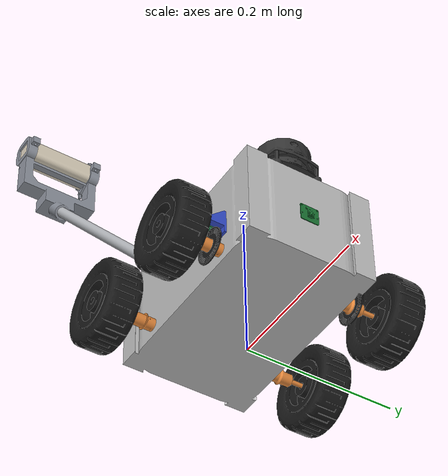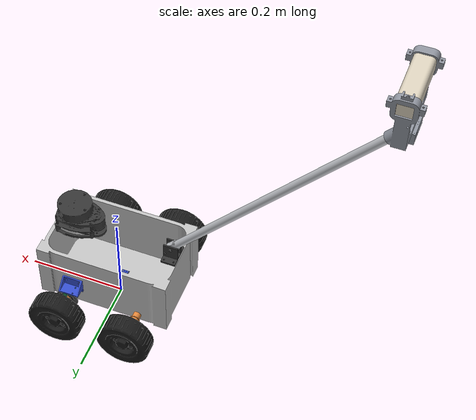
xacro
<?xml version="1.0"?>
<robot name="guide_dog_rover" xmlns:xacro="http://www.ros.org/wiki/xacro">

  <!-- Drivetrain                                                          -->
  <xacro:property name="wheel_radius"   value="0.055"/>   <!-- 110 mm wheel, measured -->
  <xacro:property name="wheel_width"    value="0.041"/>
  <xacro:property name="cad_wheel_radius" value="0.0598"/>  <!-- size of meshes/*_wheel.stl -->
  <xacro:property name="track_width"    value="0.290"/>   <!-- L wheel centre to R wheel centre: 240 + 2 x 25 extender -->
  <xacro:property name="wheelbase"      value="0.1473"/>  <!-- front axle to rear axle -->

  <xacro:property name="body_wall_y"    value="0.0813"/>  <!-- outer face of the side wall, from the CAD -->

  <!-- Chassis tub: outer bounding box, relative to base_link              -->
  <xacro:property name="chassis_length" value="0.2743"/>
  <xacro:property name="chassis_width"  value="0.2083"/>
  <xacro:property name="chassis_height" value="0.1296"/>
  <xacro:property name="chassis_bottom" value="-0.0153"/>  <!-- underside is 15 mm below the axles -->

  <!-- Sensors: pose relative to base_link (x forward, y left, z up)       -->

  <xacro:property name="laser_x"   value="0.08805"/>
  <xacro:property name="laser_y"   value="-0.0011"/>
  <xacro:property name="laser_z"   value="0.1730"/>
  <xacro:property name="laser_yaw" value="${pi}"/>

  <xacro:property name="imu_x"     value="-0.00455"/>
  <xacro:property name="imu_y"     value="-0.0080"/>
  <xacro:property name="imu_z"     value="-0.0097"/>
  <xacro:property name="imu_roll"  value="0.0"/>
  <xacro:property name="imu_pitch" value="0.0"/>
  <xacro:property name="imu_yaw"   value="${-pi/2}"/>

  <xacro:property name="camera_x"     value="0.13975"/>
  <xacro:property name="camera_y"     value="0.0"/>
  <xacro:property name="camera_z"     value="0.0469"/>
  <xacro:property name="camera_pitch" value="0.0"/>     <!-- positive = tilted DOWN -->

  <!-- Masses, only used by simulators. -->
  <xacro:property name="chassis_mass" value="2.0"/>
  <xacro:property name="wheel_mass"   value="0.15"/>

  <!-- Derived - do not edit                                               -->
  <xacro:property name="half_track" value="${track_width / 2}"/>
  <xacro:property name="half_base"  value="${wheelbase / 2}"/>
  <xacro:property name="mesh_dir"   value="package://rover_description/meshes"/>
  <xacro:property name="ext_offset" value="${half_track - body_wall_y}"/>  <!-- wheel centre to wall face -->
  <xacro:property name="mm"         value="0.001 0.001 0.001"/>            <!-- encoder meshes are in mm -->

  <!-- Materials                                                           -->
  <material name="grey">  <color rgba="0.75 0.75 0.75 1"/></material>
  <material name="black"> <color rgba="0.10 0.10 0.10 1"/></material>
  <material name="dark">  <color rgba="0.20 0.20 0.20 1"/></material>
  <material name="green"> <color rgba="0.10 0.45 0.20 1"/></material>
  <material name="blue">  <color rgba="0.20 0.30 0.80 1"/></material>
  <material name="orange"><color rgba="0.89 0.53 0.23 1"/></material>
  <material name="sensor"><color rgba="0.17 0.54 0.32 1"/></material>

  <!-- Inertia helpers                                                     -->
  <xacro:macro name="box_inertia" params="m x y z *origin">
    <inertial>
      <xacro:insert_block name="origin"/>
      <mass value="${m}"/>
      <inertia ixx="${m*(y*y+z*z)/12}" ixy="0" ixz="0"
               iyy="${m*(x*x+z*z)/12}" iyz="0"
               izz="${m*(x*x+y*y)/12}"/>
    </inertial>
  </xacro:macro>

  <!-- Cylinder with its axis along the link's Y (how the wheels are built). -->
  <xacro:macro name="wheel_inertia" params="m r h">
    <inertial>
      <mass value="${m}"/>
      <inertia ixx="${m*(3*r*r+h*h)/12}" ixy="0" ixz="0"
               iyy="${m*r*r/2}"          iyz="0"
               izz="${m*(3*r*r+h*h)/12}"/>
    </inertial>
  </xacro:macro>

  <!-- Base                                                                -->
  <link name="base_footprint"/>

  <joint name="base_footprint_joint" type="fixed">
    <parent link="base_footprint"/>
    <child  link="base_link"/>
    <origin xyz="0 0 ${wheel_radius}" rpy="0 0 0"/>
  </joint>

  <link name="base_link"/>

  <!-- The chassis link shares base_link's origin so its mesh drops straight
       in; the collision box is offset to where the tub actually is. -->
  <joint name="chassis_joint" type="fixed">
    <parent link="base_link"/>
    <child  link="chassis"/>
    <origin xyz="0 0 0" rpy="0 0 0"/>
  </joint>

  <link name="chassis">
    <visual>
      <geometry><mesh filename="${mesh_dir}/chassis.stl"/></geometry>
      <material name="grey"/>
    </visual>
    <collision>
      <origin xyz="0 0 ${chassis_bottom + chassis_height / 2}" rpy="0 0 0"/>
      <geometry><box size="${chassis_length} ${chassis_width} ${chassis_height}"/></geometry>
    </collision>
    <xacro:box_inertia m="${chassis_mass}" x="${chassis_length}" y="${chassis_width}" z="${chassis_height}">
      <origin xyz="0 0 ${chassis_bottom + chassis_height / 2}" rpy="0 0 0"/>
    </xacro:box_inertia>
  </link>

  <!-- Wheels                                                              -->
  <!-- Skid-steer: both wheels on a side are driven together and share one  -->
  <!-- encoder, so kinematically this is a differential drive with         -->
  <!-- track_width as the separation. Four are modelled because four touch  -->
  <!-- the ground (footprint, collision, simulation).                      -->
  <!-- side: +1 left, -1 right. Extender meshes have X out of the wall, so they
       are yawed by side * pi/2 and moved from the wheel centre back to the wall. -->
  <xacro:macro name="wheel" params="prefix x side encoder">
    <xacro:property name="y" value="${side * half_track}"/>
    <joint name="${prefix}_wheel_joint" type="continuous">
      <parent link="base_link"/>
      <child  link="${prefix}_wheel"/>
      <origin xyz="${x} ${y} 0" rpy="0 0 0"/>
      <axis xyz="0 1 0"/>
    </joint>

    <link name="${prefix}_wheel">
      <visual>
        <!-- Mesh axle is along Y: scale X and Z (the diameter), keep Y (the width). -->
        <geometry><mesh filename="${mesh_dir}/${prefix}_wheel.stl"
                        scale="${wheel_radius / cad_wheel_radius} 1 ${wheel_radius / cad_wheel_radius}"/></geometry>
        <material name="black"/>
      </visual>
      <collision>
        <origin xyz="0 0 0" rpy="${pi/2} 0 0"/>
        <geometry><cylinder radius="${wheel_radius}" length="${wheel_width}"/></geometry>
      </collision>
      <visual>
        <origin xyz="0 ${-side * ext_offset} 0" rpy="0 0 ${side * pi/2}"/>
        <geometry><mesh filename="${mesh_dir}/shaft_extender.stl" scale="${mm}"/></geometry>
        <material name="orange"/>
      </visual>
      <xacro:if value="${encoder}">
        <visual>
          <origin xyz="0 ${-side * ext_offset} 0" rpy="0 0 ${side * pi/2}"/>
          <geometry><mesh filename="${mesh_dir}/encoder_disc.stl" scale="${mm}"/></geometry>
          <material name="black"/>
        </visual>
      </xacro:if>
      <xacro:wheel_inertia m="${wheel_mass}" r="${wheel_radius}" h="${wheel_width}"/>
    </link>

    <!-- Slot sensor and its wall bracket: fixed to the body, the disc turns through the fork. -->
    <xacro:if value="${encoder}">
      <xacro:property name="hand" value="${'left' if side > 0 else 'right'}"/>
      <joint name="${prefix}_encoder_joint" type="fixed">
        <parent link="base_link"/>
        <child  link="${prefix}_encoder"/>
        <origin xyz="${x} ${side * body_wall_y} 0" rpy="0 0 ${side * pi/2}"/>
      </joint>
      <link name="${prefix}_encoder">
        <visual>
          <geometry><mesh filename="${mesh_dir}/encoder_holder_${hand}.stl" scale="${mm}"/></geometry>
          <material name="blue"/>
        </visual>
        <visual>
          <geometry><mesh filename="${mesh_dir}/encoder_sensor_${hand}.stl" scale="${mm}"/></geometry>
          <material name="sensor"/>
        </visual>
      </link>
    </xacro:if>
  </xacro:macro>

  <!-- One encoder per side, on the front wheels; the rear extenders have no disc. -->
  <xacro:wheel prefix="front_left"  x="${ half_base}" side="1"  encoder="true"/>
  <xacro:wheel prefix="front_right" x="${ half_base}" side="-1" encoder="true"/>
  <xacro:wheel prefix="rear_left"   x="${-half_base}" side="1"  encoder="false"/>
  <xacro:wheel prefix="rear_right"  x="${-half_base}" side="-1" encoder="false"/>

  <!-- LiDAR                                                               -->
  <joint name="laser_joint" type="fixed">
    <parent link="base_link"/>
    <child  link="laser"/>
    <origin xyz="${laser_x} ${laser_y} ${laser_z}" rpy="0 0 ${laser_yaw}"/>
  </joint>

  <link name="laser">
    <visual>
      <geometry><mesh filename="${mesh_dir}/lidar.stl"/></geometry>
      <material name="dark"/>
    </visual>
    <!-- Unit plus its mount: 62 mm tall, top 9 mm above the scan plane. -->
    <collision>
      <origin xyz="0 0 -0.0221" rpy="0 0 0"/>
      <geometry><cylinder radius="0.036" length="0.0626"/></geometry>
    </collision>
  </link>

  <!-- IMU                                                                 -->
  <joint name="imu_joint" type="fixed">
    <parent link="base_link"/>
    <child  link="imu_link"/>
    <origin xyz="${imu_x} ${imu_y} ${imu_z}" rpy="${imu_roll} ${imu_pitch} ${imu_yaw}"/>
  </joint>

  <link name="imu_link">
    <visual>
      <geometry><mesh filename="${mesh_dir}/imu.stl"/></geometry>
      <material name="blue"/>
    </visual>
  </link>

  <!-- Camera                                                              -->
  <joint name="camera_joint" type="fixed">
    <parent link="base_link"/>
    <child  link="camera_link"/>
    <origin xyz="${camera_x} ${camera_y} ${camera_z}" rpy="0 ${camera_pitch} 0"/>
  </joint>

  <link name="camera_link">
    <visual>
      <geometry><mesh filename="${mesh_dir}/camera.stl"/></geometry>
      <material name="green"/>
    </visual>
  </link>

  <!-- Image pipelines (OpenCV, image_proc, AprilTag, ...) expect the optical
       convention. Set the camera driver's frame_id to this one. -->
  <joint name="camera_optical_joint" type="fixed">
    <parent link="camera_link"/>
    <child  link="camera_link_optical"/>
    <origin xyz="0 0 0" rpy="${-pi/2} 0 ${-pi/2}"/>
  </joint>

  <link name="camera_link_optical"/>

  <!-- Haptic handle (generated by tools/handle_to_urdf.py)                -->
  <!--   xacro rover.urdf.xacro handle:=false          without the handle   -->
  <!--   xacro rover.urdf.xacro handle_joint:=fixed    hinge locked (sim)   -->
  <xacro:arg name="handle"       default="true"/>
  <xacro:arg name="handle_joint" default="revolute"/>
  <xacro:include filename="handle.urdf.xacro"/>
  <xacro:if value="$(arg handle)">
    <xacro:haptic_handle joint_type="$(arg handle_joint)"/>
  </xacro:if>

</robot>

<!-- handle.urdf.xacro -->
<robot xmlns:xacro="http://www.ros.org/wiki/xacro">
  <xacro:macro name="haptic_handle" params="joint_type:=revolute">
    <material name="handle_grey"><color rgba="0.55 0.57 0.61 1"/></material>
    <material name="handle_grip"><color rgba="0.85 0.81 0.73 1"/></material>
    <material name="aluminium"> <color rgba="0.75 0.76 0.78 1"/></material>
    <material name="vib_board"> <color rgba="0.08 0.08 0.09 1"/></material>

    <!-- Hinge bracket, bolted to the rover's rear top. Frame on the pivot axis. -->
    <joint name="handle_mount_joint" type="fixed">
      <parent link="base_link"/>
      <child  link="handle_mount"/>
      <origin xyz="-0.1172 0 0.1393" rpy="0 0 0"/>
    </joint>
    <link name="handle_mount">
      <visual>
        <geometry><mesh filename="${mesh_dir}/handle_mount.stl" scale="${mm}"/></geometry>
        <material name="dark"/>
      </visual>
    </link>

    <joint name="handle_joint" type="${joint_type}">
      <parent link="handle_mount"/>
      <child  link="handle"/>
      <origin xyz="0 0 0" rpy="0 0 0"/>
      <axis xyz="0 1 0"/>
      <limit lower="-0.2618" upper="0.4363" effort="20" velocity="2"/>
      <dynamics damping="0.5" friction="0.2"/>
    </joint>

    <link name="handle">
      <visual>
        <geometry><mesh filename="${mesh_dir}/handle_rod.stl" scale="${mm}"/></geometry>
        <material name="aluminium"/>
      </visual>
      <visual>
        <geometry><mesh filename="${mesh_dir}/handle_frame.stl" scale="${mm}"/></geometry>
        <material name="handle_grey"/>
      </visual>
      <visual>
        <geometry><mesh filename="${mesh_dir}/handle_grip.stl" scale="${mm}"/></geometry>
        <material name="handle_grip"/>
      </visual>
      <!-- The rod is what the LiDAR sees behind the robot: keep this collision for self-filtering. -->
      <collision>
        <origin xyz="-0.19798 0 0.23594" rpy="0 2.44346 0"/>
        <geometry><cylinder radius="0.008" length="0.6300"/></geometry>
      </collision>
      <collision>
        <origin xyz="-0.40158 0 0.52389" rpy="0 0 0"/>
        <geometry><box size="0.064458 0.12707 0.16091"/></geometry>
      </collision>
      <inertial>
        <origin xyz="-0.33335 0 0.44043" rpy="0 0 0"/>
        <mass value="0.251"/>
        <inertia ixx="7.148e-03" ixy="0.000e+00" ixz="4.948e-03" iyy="1.066e-02" iyz="0.000e+00" izz="3.527e-03"/>
      </inertial>
    </link>

    <!-- front vibration module (driven by PIN_HAP_FRONT in esp32/rover_microros/pins.h). Origin: motor face on the grip's 1 mm skin; +X = out through the skin. -->
    <joint name="haptic_front_joint" type="fixed">
      <parent link="handle"/>
      <child  link="haptic_front"/>
      <origin xyz="-0.38731 0 0.57634" rpy="0 -0 0"/>
    </joint>
    <link name="haptic_front">
      <visual>
        <geometry><mesh filename="${mesh_dir}/vibration_module.stl" scale="${mm}"/></geometry>
        <material name="vib_board"/>
      </visual>
    </link>

    <!-- back vibration module (driven by PIN_HAP_BACK in esp32/rover_microros/pins.h). Origin: motor face on the grip's 1 mm skin; +X = out through the skin. -->
    <joint name="haptic_back_joint" type="fixed">
      <parent link="handle"/>
      <child  link="haptic_back"/>
      <origin xyz="-0.42121 0 0.57584" rpy="0 -0 3.1416"/>
    </joint>
    <link name="haptic_back">
      <visual>
        <geometry><mesh filename="${mesh_dir}/vibration_module.stl" scale="${mm}"/></geometry>
        <material name="vib_board"/>
      </visual>
    </link>

    <!-- left vibration module (driven by PIN_HAP_LEFT in esp32/rover_microros/pins.h). Origin: motor face on the grip's 1 mm skin; +X = out through the skin. -->
    <joint name="haptic_left_joint" type="fixed">
      <parent link="handle"/>
      <child  link="haptic_left"/>
      <origin xyz="-0.40431 0.059 0.57734" rpy="0 -0 1.5708"/>
    </joint>
    <link name="haptic_left">
      <visual>
        <geometry><mesh filename="${mesh_dir}/vibration_module.stl" scale="${mm}"/></geometry>
        <material name="vib_board"/>
      </visual>
    </link>

    <!-- right vibration module (driven by PIN_HAP_RIGHT in esp32/rover_microros/pins.h). Origin: motor face on the grip's 1 mm skin; +X = out through the skin. -->
    <joint name="haptic_right_joint" type="fixed">
      <parent link="handle"/>
      <child  link="haptic_right"/>
      <origin xyz="-0.40431 -0.059 0.57734" rpy="0 -0 -1.5708"/>
    </joint>
    <link name="haptic_right">
      <visual>
        <geometry><mesh filename="${mesh_dir}/vibration_module.stl" scale="${mm}"/></geometry>
        <material name="vib_board"/>
      </visual>
    </link>
  </xacro:macro>
</robot>
